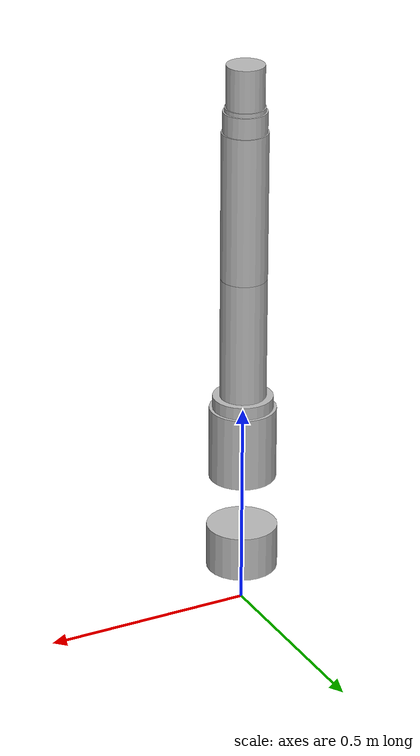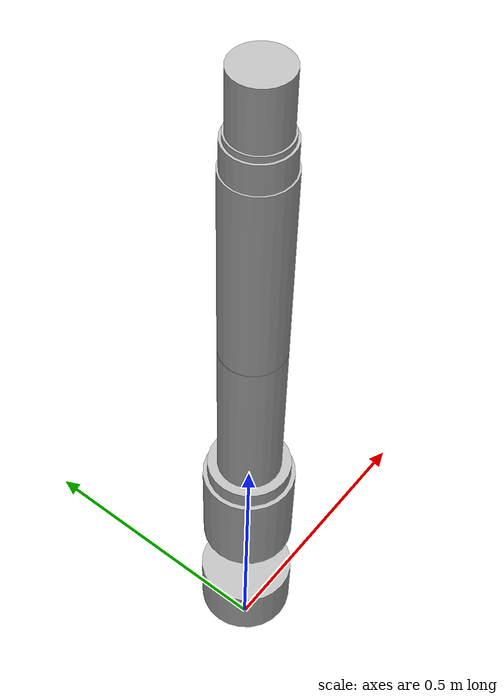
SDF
<?xml version="1.0"?>
<sdf version="1.11">
  <model name="helix7_p025">
    <link name="base_link">
      <inertial>
        <pose>0.000000 0.000000 0.145000 0 0 0</pose>
        <mass>8.000000</mass>
        <inertia>
          <ixx>0.022516667</ixx><iyy>0.022516667</iyy><izz>0.028900000</izz>
          <ixy>0</ixy><ixz>0</ixz><iyz>0</iyz>
        </inertia>
      </inertial>
      <visual name="base_link_visual">
        <pose>0.000000 0.000000 0.145000 0 0 0</pose>
        <geometry><cylinder><radius>0.085000</radius>
          <length>0.110000</length></cylinder></geometry>
      </visual>
      <collision name="base_link_sphere0">
        <pose>0.000000 0.000000 0.090000 0 0 0</pose>
        <geometry><sphere><radius>0.085000</radius></sphere></geometry>
      </collision>
      <collision name="base_link_sphere1">
        <pose>0.000000 0.000000 0.126667 0 0 0</pose>
        <geometry><sphere><radius>0.085000</radius></sphere></geometry>
      </collision>
      <collision name="base_link_sphere2">
        <pose>0.000000 0.000000 0.163333 0 0 0</pose>
        <geometry><sphere><radius>0.085000</radius></sphere></geometry>
      </collision>
      <collision name="base_link_sphere3">
        <pose>0.000000 0.000000 0.200000 0 0 0</pose>
        <geometry><sphere><radius>0.085000</radius></sphere></geometry>
      </collision>
    </link>
    <link name="shoulder">
      <pose relative_to="base_yaw">0 0 0 0 0 0</pose>
      <inertial>
        <pose>0.000000 0.000000 0.000000 0 0 0</pose>
        <mass>4.000000</mass>
        <inertia>
          <ixx>0.017200000</ixx><iyy>0.017200000</iyy><izz>0.012800000</izz>
          <ixy>0</ixy><ixz>0</ixz><iyz>0</iyz>
        </inertia>
      </inertial>
      <visual name="shoulder_visual">
        <pose>0.000000 0.000000 0.000000 0 0 0</pose>
        <geometry><cylinder><radius>0.080000</radius>
          <length>0.180000</length></cylinder></geometry>
      </visual>
      <collision name="shoulder_sphere0">
        <pose>0.000000 0.000000 -0.090000 0 0 0</pose>
        <geometry><sphere><radius>0.080000</radius></sphere></geometry>
      </collision>
      <collision name="shoulder_sphere1">
        <pose>0.000000 0.000000 -0.045000 0 0 0</pose>
        <geometry><sphere><radius>0.080000</radius></sphere></geometry>
      </collision>
      <collision name="shoulder_sphere2">
        <pose>0.000000 0.000000 0.000000 0 0 0</pose>
        <geometry><sphere><radius>0.080000</radius></sphere></geometry>
      </collision>
      <collision name="shoulder_sphere3">
        <pose>0.000000 0.000000 0.045000 0 0 0</pose>
        <geometry><sphere><radius>0.080000</radius></sphere></geometry>
      </collision>
      <collision name="shoulder_sphere4">
        <pose>0.000000 0.000000 0.090000 0 0 0</pose>
        <geometry><sphere><radius>0.080000</radius></sphere></geometry>
      </collision>
    </link>
    <link name="upper_housing">
      <pose relative_to="shoulder_pitch">0 0 0 0 0 0</pose>
      <inertial>
        <pose>0.000000 0.000000 0.050000 0 0 0</pose>
        <mass>3.000000</mass>
        <inertia>
          <ixx>0.008788000</ixx><iyy>0.008788000</iyy><izz>0.007776000</izz>
          <ixy>0</ixy><ixz>0</ixz><iyz>0</iyz>
        </inertia>
      </inertial>
      <visual name="upper_housing_visual">
        <pose>0.000000 0.000000 0.050000 0 0 0</pose>
        <geometry><cylinder><radius>0.072000</radius>
          <length>0.140000</length></cylinder></geometry>
      </visual>
      <collision name="upper_housing_sphere0">
        <pose>0.000000 0.000000 -0.020000 0 0 0</pose>
        <geometry><sphere><radius>0.072000</radius></sphere></geometry>
      </collision>
      <collision name="upper_housing_sphere1">
        <pose>0.000000 0.000000 0.026667 0 0 0</pose>
        <geometry><sphere><radius>0.072000</radius></sphere></geometry>
      </collision>
      <collision name="upper_housing_sphere2">
        <pose>0.000000 0.000000 0.073333 0 0 0</pose>
        <geometry><sphere><radius>0.072000</radius></sphere></geometry>
      </collision>
      <collision name="upper_housing_sphere3">
        <pose>0.000000 0.000000 0.120000 0 0 0</pose>
        <geometry><sphere><radius>0.072000</radius></sphere></geometry>
      </collision>
    </link>
    <link name="upper_arm">
      <pose relative_to="upper_arm_screw">0 0 0 0 0 0</pose>
      <inertial>
        <pose>0.000000 0.000000 0.150000 0 0 0</pose>
        <mass>2.800000</mass>
        <inertia>
          <ixx>0.043277500</ixx><iyy>0.043277500</iyy><izz>0.004235000</izz>
          <ixy>0</ixy><ixz>0</ixz><iyz>0</iyz>
        </inertia>
      </inertial>
      <visual name="upper_arm_visual">
        <pose>0.000000 0.000000 0.150000 0 0 0</pose>
        <geometry><cylinder><radius>0.055000</radius>
          <length>0.420000</length></cylinder></geometry>
      </visual>
      <collision name="upper_arm_sphere0">
        <pose>0.000000 0.000000 -0.060000 0 0 0</pose>
        <geometry><sphere><radius>0.055000</radius></sphere></geometry>
      </collision>
      <collision name="upper_arm_sphere1">
        <pose>0.000000 0.000000 -0.013333 0 0 0</pose>
        <geometry><sphere><radius>0.055000</radius></sphere></geometry>
      </collision>
      <collision name="upper_arm_sphere2">
        <pose>0.000000 0.000000 0.033333 0 0 0</pose>
        <geometry><sphere><radius>0.055000</radius></sphere></geometry>
      </collision>
      <collision name="upper_arm_sphere3">
        <pose>0.000000 0.000000 0.080000 0 0 0</pose>
        <geometry><sphere><radius>0.055000</radius></sphere></geometry>
      </collision>
      <collision name="upper_arm_sphere4">
        <pose>0.000000 0.000000 0.126667 0 0 0</pose>
        <geometry><sphere><radius>0.055000</radius></sphere></geometry>
      </collision>
      <collision name="upper_arm_sphere5">
        <pose>0.000000 0.000000 0.173333 0 0 0</pose>
        <geometry><sphere><radius>0.055000</radius></sphere></geometry>
      </collision>
      <collision name="upper_arm_sphere6">
        <pose>0.000000 0.000000 0.220000 0 0 0</pose>
        <geometry><sphere><radius>0.055000</radius></sphere></geometry>
      </collision>
      <collision name="upper_arm_sphere7">
        <pose>0.000000 0.000000 0.266667 0 0 0</pose>
        <geometry><sphere><radius>0.055000</radius></sphere></geometry>
      </collision>
      <collision name="upper_arm_sphere8">
        <pose>0.000000 0.000000 0.313333 0 0 0</pose>
        <geometry><sphere><radius>0.055000</radius></sphere></geometry>
      </collision>
      <collision name="upper_arm_sphere9">
        <pose>0.000000 0.000000 0.360000 0 0 0</pose>
        <geometry><sphere><radius>0.055000</radius></sphere></geometry>
      </collision>
    </link>
    <link name="forearm">
      <pose relative_to="elbow">0 0 0 0 0 0</pose>
      <inertial>
        <pose>0.000000 0.000000 0.180000 0 0 0</pose>
        <mass>2.400000</mass>
        <inertia>
          <ixx>0.027735000</ixx><iyy>0.027735000</iyy><izz>0.003630000</izz>
          <ixy>0</ixy><ixz>0</ixz><iyz>0</iyz>
        </inertia>
      </inertial>
      <visual name="forearm_visual">
        <pose>0.000000 0.000000 0.180000 0 0 0</pose>
        <geometry><cylinder><radius>0.055000</radius>
          <length>0.360000</length></cylinder></geometry>
      </visual>
      <collision name="forearm_sphere0">
        <pose>0.000000 0.000000 0.000000 0 0 0</pose>
        <geometry><sphere><radius>0.055000</radius></sphere></geometry>
      </collision>
      <collision name="forearm_sphere1">
        <pose>0.000000 0.000000 0.045000 0 0 0</pose>
        <geometry><sphere><radius>0.055000</radius></sphere></geometry>
      </collision>
      <collision name="forearm_sphere2">
        <pose>0.000000 0.000000 0.090000 0 0 0</pose>
        <geometry><sphere><radius>0.055000</radius></sphere></geometry>
      </collision>
      <collision name="forearm_sphere3">
        <pose>0.000000 0.000000 0.135000 0 0 0</pose>
        <geometry><sphere><radius>0.055000</radius></sphere></geometry>
      </collision>
      <collision name="forearm_sphere4">
        <pose>0.000000 0.000000 0.180000 0 0 0</pose>
        <geometry><sphere><radius>0.055000</radius></sphere></geometry>
      </collision>
      <collision name="forearm_sphere5">
        <pose>0.000000 0.000000 0.225000 0 0 0</pose>
        <geometry><sphere><radius>0.055000</radius></sphere></geometry>
      </collision>
      <collision name="forearm_sphere6">
        <pose>0.000000 0.000000 0.270000 0 0 0</pose>
        <geometry><sphere><radius>0.055000</radius></sphere></geometry>
      </collision>
      <collision name="forearm_sphere7">
        <pose>0.000000 0.000000 0.315000 0 0 0</pose>
        <geometry><sphere><radius>0.055000</radius></sphere></geometry>
      </collision>
      <collision name="forearm_sphere8">
        <pose>0.000000 0.000000 0.360000 0 0 0</pose>
        <geometry><sphere><radius>0.055000</radius></sphere></geometry>
      </collision>
    </link>
    <link name="wrist">
      <pose relative_to="forearm_roll">0 0 0 0 0 0</pose>
      <inertial>
        <pose>0.000000 0.000000 0.000000 0 0 0</pose>
        <mass>1.200000</mass>
        <inertia>
          <ixx>0.001811200</ixx><iyy>0.001811200</iyy><izz>0.001622400</izz>
          <ixy>0</ixy><ixz>0</ixz><iyz>0</iyz>
        </inertia>
      </inertial>
      <visual name="wrist_visual">
        <pose>0.000000 0.000000 0.000000 0 0 0</pose>
        <geometry><cylinder><radius>0.052000</radius>
          <length>0.100000</length></cylinder></geometry>
      </visual>
      <collision name="wrist_sphere0">
        <pose>0.000000 0.000000 -0.050000 0 0 0</pose>
        <geometry><sphere><radius>0.052000</radius></sphere></geometry>
      </collision>
      <collision name="wrist_sphere1">
        <pose>0.000000 0.000000 0.000000 0 0 0</pose>
        <geometry><sphere><radius>0.052000</radius></sphere></geometry>
      </collision>
      <collision name="wrist_sphere2">
        <pose>0.000000 0.000000 0.050000 0 0 0</pose>
        <geometry><sphere><radius>0.052000</radius></sphere></geometry>
      </collision>
    </link>
    <link name="wrist_pitch">
      <pose relative_to="wrist_pitch_joint">0 0 0 0 0 0</pose>
      <inertial>
        <pose>0.000000 0.000000 0.030000 0 0 0</pose>
        <mass>0.800000</mass>
        <inertia>
          <ixx>0.000700800</ixx><iyy>0.000700800</iyy><izz>0.000921600</izz>
          <ixy>0</ixy><ixz>0</ixz><iyz>0</iyz>
        </inertia>
      </inertial>
      <visual name="wrist_pitch_visual">
        <pose>0.000000 0.000000 0.030000 0 0 0</pose>
        <geometry><cylinder><radius>0.048000</radius>
          <length>0.060000</length></cylinder></geometry>
      </visual>
      <collision name="wrist_pitch_sphere0">
        <pose>0.000000 0.000000 0.000000 0 0 0</pose>
        <geometry><sphere><radius>0.048000</radius></sphere></geometry>
      </collision>
      <collision name="wrist_pitch_sphere1">
        <pose>0.000000 0.000000 0.030000 0 0 0</pose>
        <geometry><sphere><radius>0.048000</radius></sphere></geometry>
      </collision>
      <collision name="wrist_pitch_sphere2">
        <pose>0.000000 0.000000 0.060000 0 0 0</pose>
        <geometry><sphere><radius>0.048000</radius></sphere></geometry>
      </collision>
    </link>
    <link name="flange">
      <pose relative_to="wrist_roll">0 0 0 0 0 0</pose>
      <inertial>
        <pose>0.000000 0.000000 0.050000 0 0 0</pose>
        <mass>0.600000</mass>
        <inertia>
          <ixx>0.000803750</ixx><iyy>0.000803750</iyy><izz>0.000607500</izz>
          <ixy>0</ixy><ixz>0</ixz><iyz>0</iyz>
        </inertia>
      </inertial>
      <visual name="flange_visual">
        <pose>0.000000 0.000000 0.050000 0 0 0</pose>
        <geometry><cylinder><radius>0.045000</radius>
          <length>0.100000</length></cylinder></geometry>
      </visual>
      <collision name="flange_sphere0">
        <pose>0.000000 0.000000 0.000000 0 0 0</pose>
        <geometry><sphere><radius>0.045000</radius></sphere></geometry>
      </collision>
      <collision name="flange_sphere1">
        <pose>0.000000 0.000000 0.050000 0 0 0</pose>
        <geometry><sphere><radius>0.045000</radius></sphere></geometry>
      </collision>
      <collision name="flange_sphere2">
        <pose>0.000000 0.000000 0.100000 0 0 0</pose>
        <geometry><sphere><radius>0.045000</radius></sphere></geometry>
      </collision>
    </link>
    <joint name="base_yaw" type="revolute">
      <pose relative_to="base_link">0.000000 0.000000 0.420000 0.000000 0.000000 0.000000</pose>
      <parent>base_link</parent>
      <child>shoulder</child>
      <axis>
        <xyz>0.000000 0.000000 1.000000</xyz>
        <limit>
          <lower>-2.900000000</lower><upper>2.900000000</upper>
          <effort>200.0</effort><velocity>2.0</velocity>
        </limit>
      </axis>
    </joint>
    <joint name="shoulder_pitch" type="revolute">
      <pose relative_to="shoulder">0.000000 0.000000 0.000000 0.000000 0.000000 0.000000</pose>
      <parent>shoulder</parent>
      <child>upper_housing</child>
      <axis>
        <xyz>0.000000 1.000000 0.000000</xyz>
        <limit>
          <lower>-2.000000000</lower><upper>2.000000000</upper>
          <effort>200.0</effort><velocity>2.0</velocity>
        </limit>
      </axis>
    </joint>
    <joint name="upper_arm_screw" type="screw">
      <pose relative_to="upper_housing">0.000000 0.000000 0.060000 0.000000 0.000000 0.000000</pose>
      <parent>upper_housing</parent>
      <child>upper_arm</child>
      <screw_thread_pitch>0.025000000</screw_thread_pitch>
      <axis>
        <xyz>0.000000 0.000000 1.000000</xyz>
        <limit>
          <lower>-6.283185307</lower><upper>6.283185307</upper>
          <effort>200.0</effort><velocity>2.0</velocity>
        </limit>
      </axis>
    </joint>
    <joint name="elbow" type="revolute">
      <pose relative_to="upper_arm">0.000000 0.000000 0.360000 0.000000 0.000000 0.000000</pose>
      <parent>upper_arm</parent>
      <child>forearm</child>
      <axis>
        <xyz>0.000000 1.000000 0.000000</xyz>
        <limit>
          <lower>-2.600000000</lower><upper>2.600000000</upper>
          <effort>200.0</effort><velocity>2.0</velocity>
        </limit>
      </axis>
    </joint>
    <joint name="forearm_roll" type="revolute">
      <pose relative_to="forearm">0.000000 0.000000 0.360000 0.000000 0.000000 0.000000</pose>
      <parent>forearm</parent>
      <child>wrist</child>
      <axis>
        <xyz>0.000000 0.000000 1.000000</xyz>
        <limit>
          <lower>-2.900000000</lower><upper>2.900000000</upper>
          <effort>200.0</effort><velocity>2.0</velocity>
        </limit>
      </axis>
    </joint>
    <joint name="wrist_pitch_joint" type="revolute">
      <pose relative_to="wrist">0.000000 0.000000 0.000000 0.000000 0.000000 0.000000</pose>
      <parent>wrist</parent>
      <child>wrist_pitch</child>
      <axis>
        <xyz>0.000000 1.000000 0.000000</xyz>
        <limit>
          <lower>-2.000000000</lower><upper>2.000000000</upper>
          <effort>200.0</effort><velocity>2.0</velocity>
        </limit>
      </axis>
    </joint>
    <joint name="wrist_roll" type="revolute">
      <pose relative_to="wrist_pitch">0.000000 0.000000 0.060000 0.000000 0.000000 0.000000</pose>
      <parent>wrist_pitch</parent>
      <child>flange</child>
      <axis>
        <xyz>0.000000 0.000000 1.000000</xyz>
        <limit>
          <lower>-3.000000000</lower><upper>3.000000000</upper>
          <effort>200.0</effort><velocity>2.0</velocity>
        </limit>
      </axis>
    </joint>
    <drake:collision_filter_group name="cfg_base_link">
        <drake:member>base_link</drake:member>
        <drake:ignored_collision_filter_group>cfg_shoulder</drake:ignored_collision_filter_group>
        <drake:ignored_collision_filter_group>cfg_upper_housing</drake:ignored_collision_filter_group>
        <drake:ignored_collision_filter_group>cfg_upper_arm</drake:ignored_collision_filter_group>
    </drake:collision_filter_group>
    <drake:collision_filter_group name="cfg_shoulder">
        <drake:member>shoulder</drake:member>
        <drake:ignored_collision_filter_group>cfg_base_link</drake:ignored_collision_filter_group>
        <drake:ignored_collision_filter_group>cfg_upper_housing</drake:ignored_collision_filter_group>
        <drake:ignored_collision_filter_group>cfg_upper_arm</drake:ignored_collision_filter_group>
        <drake:ignored_collision_filter_group>cfg_forearm</drake:ignored_collision_filter_group>
    </drake:collision_filter_group>
    <drake:collision_filter_group name="cfg_upper_housing">
        <drake:member>upper_housing</drake:member>
        <drake:ignored_collision_filter_group>cfg_base_link</drake:ignored_collision_filter_group>
        <drake:ignored_collision_filter_group>cfg_shoulder</drake:ignored_collision_filter_group>
        <drake:ignored_collision_filter_group>cfg_upper_arm</drake:ignored_collision_filter_group>
        <drake:ignored_collision_filter_group>cfg_forearm</drake:ignored_collision_filter_group>
        <drake:ignored_collision_filter_group>cfg_wrist</drake:ignored_collision_filter_group>
    </drake:collision_filter_group>
    <drake:collision_filter_group name="cfg_upper_arm">
        <drake:member>upper_arm</drake:member>
        <drake:ignored_collision_filter_group>cfg_base_link</drake:ignored_collision_filter_group>
        <drake:ignored_collision_filter_group>cfg_shoulder</drake:ignored_collision_filter_group>
        <drake:ignored_collision_filter_group>cfg_upper_housing</drake:ignored_collision_filter_group>
        <drake:ignored_collision_filter_group>cfg_forearm</drake:ignored_collision_filter_group>
        <drake:ignored_collision_filter_group>cfg_wrist</drake:ignored_collision_filter_group>
        <drake:ignored_collision_filter_group>cfg_wrist_pitch</drake:ignored_collision_filter_group>
    </drake:collision_filter_group>
    <drake:collision_filter_group name="cfg_forearm">
        <drake:member>forearm</drake:member>
        <drake:ignored_collision_filter_group>cfg_shoulder</drake:ignored_collision_filter_group>
        <drake:ignored_collision_filter_group>cfg_upper_housing</drake:ignored_collision_filter_group>
        <drake:ignored_collision_filter_group>cfg_upper_arm</drake:ignored_collision_filter_group>
        <drake:ignored_collision_filter_group>cfg_wrist</drake:ignored_collision_filter_group>
        <drake:ignored_collision_filter_group>cfg_wrist_pitch</drake:ignored_collision_filter_group>
        <drake:ignored_collision_filter_group>cfg_flange</drake:ignored_collision_filter_group>
    </drake:collision_filter_group>
    <drake:collision_filter_group name="cfg_wrist">
        <drake:member>wrist</drake:member>
        <drake:ignored_collision_filter_group>cfg_upper_housing</drake:ignored_collision_filter_group>
        <drake:ignored_collision_filter_group>cfg_upper_arm</drake:ignored_collision_filter_group>
        <drake:ignored_collision_filter_group>cfg_forearm</drake:ignored_collision_filter_group>
        <drake:ignored_collision_filter_group>cfg_wrist_pitch</drake:ignored_collision_filter_group>
        <drake:ignored_collision_filter_group>cfg_flange</drake:ignored_collision_filter_group>
    </drake:collision_filter_group>
    <drake:collision_filter_group name="cfg_wrist_pitch">
        <drake:member>wrist_pitch</drake:member>
        <drake:ignored_collision_filter_group>cfg_upper_arm</drake:ignored_collision_filter_group>
        <drake:ignored_collision_filter_group>cfg_forearm</drake:ignored_collision_filter_group>
        <drake:ignored_collision_filter_group>cfg_wrist</drake:ignored_collision_filter_group>
        <drake:ignored_collision_filter_group>cfg_flange</drake:ignored_collision_filter_group>
    </drake:collision_filter_group>
    <drake:collision_filter_group name="cfg_flange">
        <drake:member>flange</drake:member>
        <drake:ignored_collision_filter_group>cfg_forearm</drake:ignored_collision_filter_group>
        <drake:ignored_collision_filter_group>cfg_wrist</drake:ignored_collision_filter_group>
        <drake:ignored_collision_filter_group>cfg_wrist_pitch</drake:ignored_collision_filter_group>
    </drake:collision_filter_group>
  </model>
</sdf>
